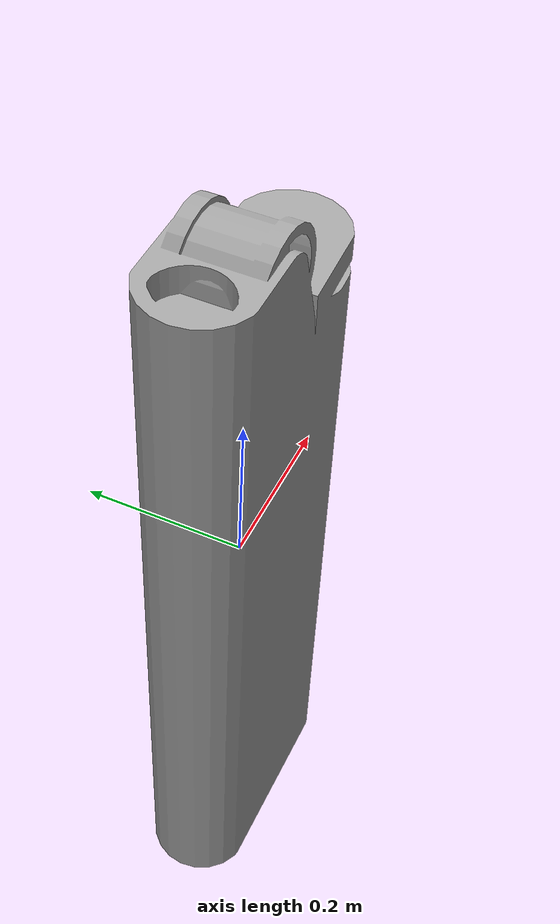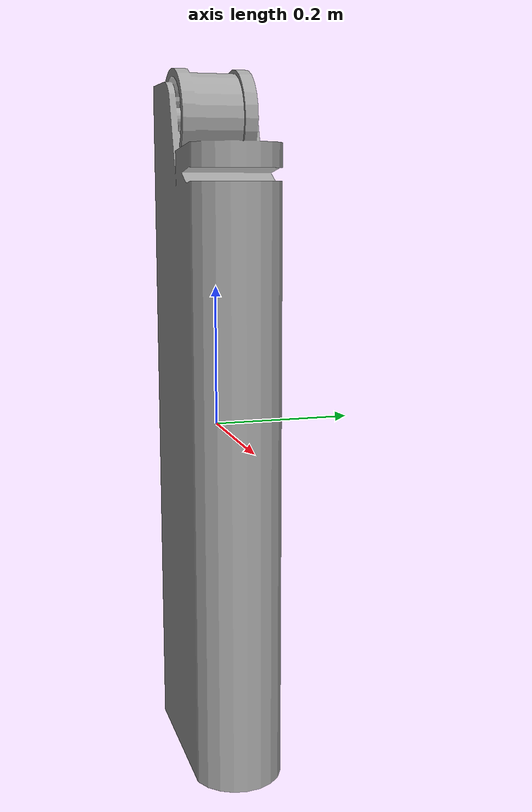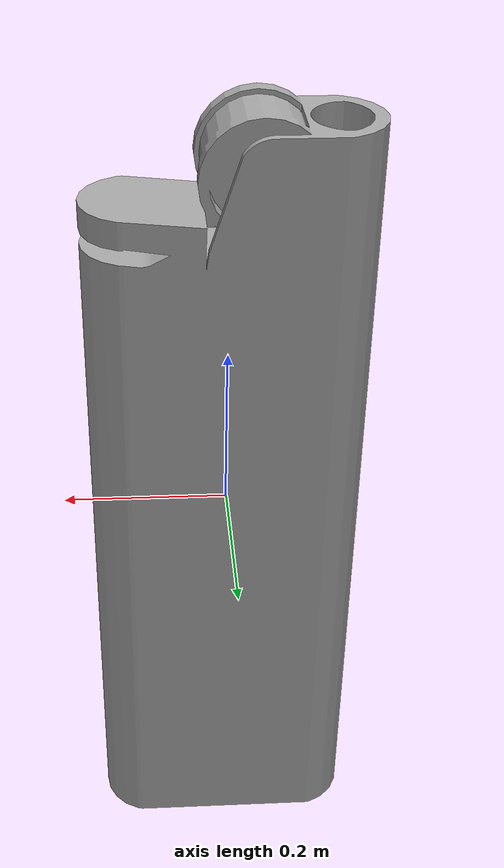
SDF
<?xml version="1.0" ?>
<sdf version="1.5">
  <model name='lighter4'>
    <pose>0 0 0 0 0 0</pose>
    <static>1</static>
    <link name='body'>
      <collision name="lighter4-coll">
        <pose>0 0 -0.5 0 0 0</pose>
        <geometry>
          <mesh>
            <uri>model://lighter4/meshes/lighter4.dae</uri>
          </mesh>
        </geometry>
      </collision>
      <visual name='lighter4'>
        <cast_shadows>1</cast_shadows>
        <pose>0 0 -0.5 0 0 0</pose>
        <geometry>
          <mesh>
            <uri>model://lighter4/meshes/lighter4.dae</uri>
          </mesh>
        </geometry>
      </visual>
      <velocity_decay>
        <linear>0</linear>
        <angular>0</angular>
      </velocity_decay>
      <self_collide>0</self_collide>
      <kinematic>0</kinematic>
      <gravity>1</gravity>
    </link>
  </model>

</sdf>
